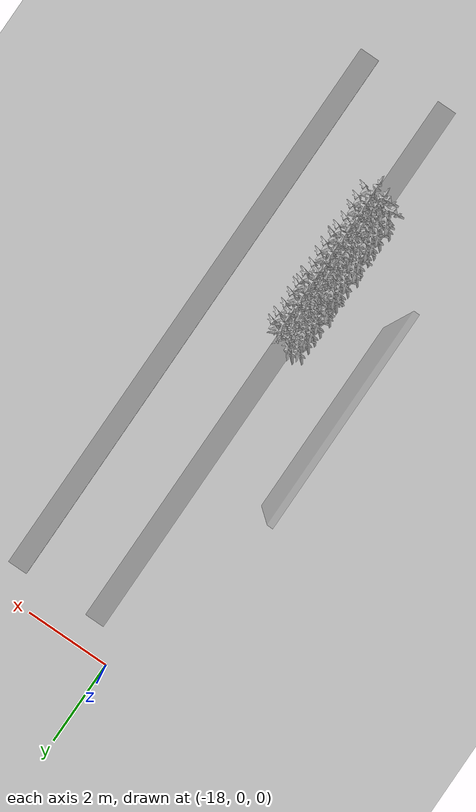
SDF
<sdf version="1.6">
 <world name="default">
  <model name="ground_plane">
   <static>1</static>
   <link name="link">
    <collision name="collision">
     <geometry><plane><normal>0 0 1</normal><size>100 100</size></plane></geometry>
     <surface>
      <contact><collide_bitmask>65535</collide_bitmask></contact>
      <friction><ode><mu>100</mu><mu2>50</mu2></ode></friction>
     </surface>
    </collision>
    <visual name="visual">
     <cast_shadows>0</cast_shadows>
     <geometry><plane><normal>0 0 1</normal><size>100 100</size></plane></geometry>
     <material>
      <script><uri>file://media/materials/scripts/gazebo.material</uri><name>Gazebo/Grey</name></script>
     </material>
    </visual>
   </link>
  </model>
  <model name="Box_24x15W_0">
   <link name="Wall">
    <pose>0 0 0.1985 0 -0 0</pose>
    <inertial>
     <mass>5</mass>
     <inertia><ixx>0.1022</ixx><iyy>0.2197</iyy><izz>0.1905</izz><ixy>0</ixy><ixz>0</ixz><iyz>0</iyz></inertia>
    </inertial>
    <collision name="Wall_Collision">
     <geometry><box><size>0.470639 13.5 0.091294</size></box></geometry>
    </collision>
    <visual name="Wall_Visual">
     <geometry><box><size>0.470639 13.5 0.091294</size></box></geometry>
     <material>
      <script><uri>file://media/materials/scripts/gazebo.material</uri><name>Gazebo/Grey</name></script>
      <ambient>1 1 1 1</ambient>
     </material>
    </visual>
   </link>
   <static>1</static>
   <pose>-15.231 -7.42579 -0.146343 0 -0 0</pose>
  </model>
  <model name="Box_24x15W">
   <link name="Wall">
    <pose>0 0 0.1985 0 -0 0</pose>
    <inertial>
     <mass>5</mass>
     <inertia><ixx>0.1022</ixx><iyy>0.2197</iyy><izz>0.1905</izz><ixy>0</ixy><ixz>0</ixz><iyz>0</iyz></inertia>
    </inertial>
    <collision name="Wall_Collision">
     <geometry><box><size>0.470639 13.5 0.091294</size></box></geometry>
    </collision>
    <visual name="Wall_Visual">
     <geometry><box><size>0.470639 13.5 0.091294</size></box></geometry>
     <material>
      <script><uri>file://media/materials/scripts/gazebo.material</uri><name>Gazebo/Grey</name></script>
      <ambient>1 1 1 1</ambient>
     </material>
    </visual>
   </link>
   <static>1</static>
   <pose>-17.2564 -7.42472 -0.14031 0 -0 0</pose>
  </model>
  <model name="Front_Plant_1_2">
   <model name="tomato_plant_medium">
    <static>1</static>
    <link name="link">
     <collision name="collision">
      <pose>0 0 0 1.5708 -0 0</pose>
      <geometry><mesh><scale>0.5 0.5 0.5</scale><uri>model://stick/meshes/stick.dae</uri></mesh></geometry>
     </collision>
     <visual name="visual">
      <geometry>
       <mesh><scale>5e-06 5e-06 6e-06</scale><uri>model://tomato_plant_medium/meshes/tomato-plant.dae</uri></mesh>
      </geometry>
     </visual>
    </link>
    <pose>0.087453 -0.595994 0.012396 0 -0 0</pose>
   </model>
   <model name="tomato_plant_medium_0">
    <static>1</static>
    <link name="link">
     <collision name="collision">
      <pose>0 0 0 1.5708 -0 0</pose>
      <geometry><mesh><scale>0.5 0.5 0.5</scale><uri>model://stick/meshes/stick.dae</uri></mesh></geometry>
     </collision>
     <visual name="visual">
      <geometry>
       <mesh><scale>5e-06 5e-06 6e-06</scale><uri>model://tomato_plant_medium/meshes/tomato-plant.dae</uri></mesh>
      </geometry>
     </visual>
    </link>
    <pose>-0.086166 -0.251822 0.012396 0 -0 0</pose>
   </model>
   <model name="tomato_plant_medium_1">
    <static>1</static>
    <link name="link">
     <collision name="collision">
      <pose>0 0 0 1.5708 -0 0</pose>
      <geometry><mesh><scale>0.5 0.5 0.5</scale><uri>model://stick/meshes/stick.dae</uri></mesh></geometry>
     </collision>
     <visual name="visual">
      <geometry>
       <mesh><scale>5e-06 5e-06 6e-06</scale><uri>model://tomato_plant_medium/meshes/tomato-plant.dae</uri></mesh>
      </geometry>
     </visual>
    </link>
    <pose>0.080199 0.118127 0.012396 0 -0 0</pose>
   </model>
   <model name="tomato_plant_small">
    <static>1</static>
    <link name="link">
     <collision name="collision">
      <pose>0 0 0 1.5708 -0 0</pose>
      <geometry><mesh><scale>0.5 0.45 0.5</scale><uri>model://stick/meshes/stick.dae</uri></mesh></geometry>
     </collision>
     <visual name="visual">
      <geometry>
       <mesh><scale>5e-06 5e-06 5e-06</scale><uri>model://tomato_plant_small/meshes/tomato-plant.dae</uri></mesh>
      </geometry>
     </visual>
    </link>
    <pose>0.099683 -1.12011 0.012396 0 -0 0</pose>
   </model>
   <model name="tomato_plant_small_0">
    <static>1</static>
    <link name="link">
     <collision name="collision">
      <pose>0 0 0 1.5708 -0 0</pose>
      <geometry><mesh><scale>0.5 0.45 0.5</scale><uri>model://stick/meshes/stick.dae</uri></mesh></geometry>
     </collision>
     <visual name="visual">
      <geometry>
       <mesh><scale>5e-06 5e-06 5e-06</scale><uri>model://tomato_plant_small/meshes/tomato-plant.dae</uri></mesh>
      </geometry>
     </visual>
    </link>
    <pose>-0.138771 -0.983982 0.012396 0 -0 0</pose>
   </model>
   <model name="tomato_plant_small_1">
    <static>1</static>
    <link name="link">
     <collision name="collision">
      <pose>0 0 0 1.5708 -0 0</pose>
      <geometry><mesh><scale>0.5 0.45 0.5</scale><uri>model://stick/meshes/stick.dae</uri></mesh></geometry>
     </collision>
     <visual name="visual">
      <geometry>
       <mesh><scale>5e-06 5e-06 5e-06</scale><uri>model://tomato_plant_small/meshes/tomato-plant.dae</uri></mesh>
      </geometry>
     </visual>
    </link>
    <pose>0.101334 -0.848814 0.012396 0 -0 0</pose>
   </model>
   <model name="tomato_plant_small_2">
    <static>1</static>
    <link name="link">
     <collision name="collision">
      <pose>0 0 0 1.5708 -0 0</pose>
      <geometry><mesh><scale>0.5 0.45 0.5</scale><uri>model://stick/meshes/stick.dae</uri></mesh></geometry>
     </collision>
     <visual name="visual">
      <geometry>
       <mesh><scale>5e-06 5e-06 5e-06</scale><uri>model://tomato_plant_small/meshes/tomato-plant.dae</uri></mesh>
      </geometry>
     </visual>
    </link>
    <pose>-0.103369 -0.683189 0.012396 0 -0 0</pose>
   </model>
   <model name="tomato_plant_small_3">
    <static>1</static>
    <link name="link">
     <collision name="collision">
      <pose>0 0 0 1.5708 -0 0</pose>
      <geometry><mesh><scale>0.5 0.45 0.5</scale><uri>model://stick/meshes/stick.dae</uri></mesh></geometry>
     </collision>
     <visual name="visual">
      <geometry>
       <mesh><scale>5e-06 5e-06 5e-06</scale><uri>model://tomato_plant_small/meshes/tomato-plant.dae</uri></mesh>
      </geometry>
     </visual>
    </link>
    <pose>-0.104381 -0.464811 0.012396 0 -0 0</pose>
   </model>
   <model name="tomato_plant_small_4">
    <static>1</static>
    <link name="link">
     <collision name="collision">
      <pose>0 0 0 1.5708 -0 0</pose>
      <geometry><mesh><scale>0.5 0.45 0.5</scale><uri>model://stick/meshes/stick.dae</uri></mesh></geometry>
     </collision>
     <visual name="visual">
      <geometry>
       <mesh><scale>5e-06 5e-06 5e-06</scale><uri>model://tomato_plant_small/meshes/tomato-plant.dae</uri></mesh>
      </geometry>
     </visual>
    </link>
    <pose>0.055604 -0.336879 0.012396 0 -0 0</pose>
   </model>
   <model name="tomato_plant_small_5">
    <static>1</static>
    <link name="link">
     <collision name="collision">
      <pose>0 0 0 1.5708 -0 0</pose>
      <geometry><mesh><scale>0.5 0.45 0.5</scale><uri>model://stick/meshes/stick.dae</uri></mesh></geometry>
     </collision>
     <visual name="visual">
      <geometry>
       <mesh><scale>5e-06 5e-06 5e-06</scale><uri>model://tomato_plant_small/meshes/tomato-plant.dae</uri></mesh>
      </geometry>
     </visual>
    </link>
    <pose>0.085059 -0.092572 0.012396 0 -0 0</pose>
   </model>
   <model name="tomato_plant_small_6">
    <static>1</static>
    <link name="link">
     <collision name="collision">
      <pose>0 0 0 1.5708 -0 0</pose>
      <geometry><mesh><scale>0.5 0.45 0.5</scale><uri>model://stick/meshes/stick.dae</uri></mesh></geometry>
     </collision>
     <visual name="visual">
      <geometry>
       <mesh><scale>5e-06 5e-06 5e-06</scale><uri>model://tomato_plant_small/meshes/tomato-plant.dae</uri></mesh>
      </geometry>
     </visual>
    </link>
    <pose>-0.096345 0.008888 0.012396 0 -0 0</pose>
   </model>
   <static>0</static>
   <pose>-17.2096 -10.4043 0 0 -0 0</pose>
  </model>
  <model name="Front_Plant_1_3">
   <model name="tomato_plant_medium">
    <static>1</static>
    <link name="link">
     <collision name="collision">
      <pose>0 0 0 1.5708 -0 0</pose>
      <geometry><mesh><scale>0.5 0.5 0.5</scale><uri>model://stick/meshes/stick.dae</uri></mesh></geometry>
     </collision>
     <visual name="visual">
      <geometry>
       <mesh><scale>5e-06 5e-06 6e-06</scale><uri>model://tomato_plant_medium/meshes/tomato-plant.dae</uri></mesh>
      </geometry>
     </visual>
    </link>
    <pose>0.087453 -0.595994 0.012396 0 -0 0</pose>
   </model>
   <model name="tomato_plant_medium_0">
    <static>1</static>
    <link name="link">
     <collision name="collision">
      <pose>0 0 0 1.5708 -0 0</pose>
      <geometry><mesh><scale>0.5 0.5 0.5</scale><uri>model://stick/meshes/stick.dae</uri></mesh></geometry>
     </collision>
     <visual name="visual">
      <geometry>
       <mesh><scale>5e-06 5e-06 6e-06</scale><uri>model://tomato_plant_medium/meshes/tomato-plant.dae</uri></mesh>
      </geometry>
     </visual>
    </link>
    <pose>-0.086166 -0.251822 0.012396 0 -0 0</pose>
   </model>
   <model name="tomato_plant_medium_1">
    <static>1</static>
    <link name="link">
     <collision name="collision">
      <pose>0 0 0 1.5708 -0 0</pose>
      <geometry><mesh><scale>0.5 0.5 0.5</scale><uri>model://stick/meshes/stick.dae</uri></mesh></geometry>
     </collision>
     <visual name="visual">
      <geometry>
       <mesh><scale>5e-06 5e-06 6e-06</scale><uri>model://tomato_plant_medium/meshes/tomato-plant.dae</uri></mesh>
      </geometry>
     </visual>
    </link>
    <pose>0.080199 0.118127 0.012396 0 -0 0</pose>
   </model>
   <model name="tomato_plant_small">
    <static>1</static>
    <link name="link">
     <collision name="collision">
      <pose>0 0 0 1.5708 -0 0</pose>
      <geometry><mesh><scale>0.5 0.45 0.5</scale><uri>model://stick/meshes/stick.dae</uri></mesh></geometry>
     </collision>
     <visual name="visual">
      <geometry>
       <mesh><scale>5e-06 5e-06 5e-06</scale><uri>model://tomato_plant_small/meshes/tomato-plant.dae</uri></mesh>
      </geometry>
     </visual>
    </link>
    <pose>0.099683 -1.12011 0.012396 0 -0 0</pose>
   </model>
   <model name="tomato_plant_small_0">
    <static>1</static>
    <link name="link">
     <collision name="collision">
      <pose>0 0 0 1.5708 -0 0</pose>
      <geometry><mesh><scale>0.5 0.45 0.5</scale><uri>model://stick/meshes/stick.dae</uri></mesh></geometry>
     </collision>
     <visual name="visual">
      <geometry>
       <mesh><scale>5e-06 5e-06 5e-06</scale><uri>model://tomato_plant_small/meshes/tomato-plant.dae</uri></mesh>
      </geometry>
     </visual>
    </link>
    <pose>-0.138771 -0.983982 0.012396 0 -0 0</pose>
   </model>
   <model name="tomato_plant_small_1">
    <static>1</static>
    <link name="link">
     <collision name="collision">
      <pose>0 0 0 1.5708 -0 0</pose>
      <geometry><mesh><scale>0.5 0.45 0.5</scale><uri>model://stick/meshes/stick.dae</uri></mesh></geometry>
     </collision>
     <visual name="visual">
      <geometry>
       <mesh><scale>5e-06 5e-06 5e-06</scale><uri>model://tomato_plant_small/meshes/tomato-plant.dae</uri></mesh>
      </geometry>
     </visual>
    </link>
    <pose>0.101334 -0.848814 0.012396 0 -0 0</pose>
   </model>
   <model name="tomato_plant_small_2">
    <static>1</static>
    <link name="link">
     <collision name="collision">
      <pose>0 0 0 1.5708 -0 0</pose>
      <geometry><mesh><scale>0.5 0.45 0.5</scale><uri>model://stick/meshes/stick.dae</uri></mesh></geometry>
     </collision>
     <visual name="visual">
      <geometry>
       <mesh><scale>5e-06 5e-06 5e-06</scale><uri>model://tomato_plant_small/meshes/tomato-plant.dae</uri></mesh>
      </geometry>
     </visual>
    </link>
    <pose>-0.103369 -0.683189 0.012396 0 -0 0</pose>
   </model>
   <model name="tomato_plant_small_3">
    <static>1</static>
    <link name="link">
     <collision name="collision">
      <pose>0 0 0 1.5708 -0 0</pose>
      <geometry><mesh><scale>0.5 0.45 0.5</scale><uri>model://stick/meshes/stick.dae</uri></mesh></geometry>
     </collision>
     <visual name="visual">
      <geometry>
       <mesh><scale>5e-06 5e-06 5e-06</scale><uri>model://tomato_plant_small/meshes/tomato-plant.dae</uri></mesh>
      </geometry>
     </visual>
    </link>
    <pose>-0.104381 -0.464811 0.012396 0 -0 0</pose>
   </model>
   <model name="tomato_plant_small_4">
    <static>1</static>
    <link name="link">
     <collision name="collision">
      <pose>0 0 0 1.5708 -0 0</pose>
      <geometry><mesh><scale>0.5 0.45 0.5</scale><uri>model://stick/meshes/stick.dae</uri></mesh></geometry>
     </collision>
     <visual name="visual">
      <geometry>
       <mesh><scale>5e-06 5e-06 5e-06</scale><uri>model://tomato_plant_small/meshes/tomato-plant.dae</uri></mesh>
      </geometry>
     </visual>
    </link>
    <pose>0.055604 -0.336879 0.012396 0 -0 0</pose>
   </model>
   <model name="tomato_plant_small_5">
    <static>1</static>
    <link name="link">
     <collision name="collision">
      <pose>0 0 0 1.5708 -0 0</pose>
      <geometry><mesh><scale>0.5 0.45 0.5</scale><uri>model://stick/meshes/stick.dae</uri></mesh></geometry>
     </collision>
     <visual name="visual">
      <geometry>
       <mesh><scale>5e-06 5e-06 5e-06</scale><uri>model://tomato_plant_small/meshes/tomato-plant.dae</uri></mesh>
      </geometry>
     </visual>
    </link>
    <pose>0.085059 -0.092572 0.012396 0 -0 0</pose>
   </model>
   <model name="tomato_plant_small_6">
    <static>1</static>
    <link name="link">
     <collision name="collision">
      <pose>0 0 0 1.5708 -0 0</pose>
      <geometry><mesh><scale>0.5 0.45 0.5</scale><uri>model://stick/meshes/stick.dae</uri></mesh></geometry>
     </collision>
     <visual name="visual">
      <geometry>
       <mesh><scale>5e-06 5e-06 5e-06</scale><uri>model://tomato_plant_small/meshes/tomato-plant.dae</uri></mesh>
      </geometry>
     </visual>
    </link>
    <pose>-0.096345 0.008888 0.012396 0 -0 0</pose>
   </model>
   <static>0</static>
   <pose>-17.2096 -9.20246 0 0 -0 0</pose>
  </model>
  <model name="Front_Plant_1_4">
   <model name="tomato_plant_medium">
    <static>1</static>
    <link name="link">
     <collision name="collision">
      <pose>0 0 0 1.5708 -0 0</pose>
      <geometry><mesh><scale>0.5 0.5 0.5</scale><uri>model://stick/meshes/stick.dae</uri></mesh></geometry>
     </collision>
     <visual name="visual">
      <geometry>
       <mesh><scale>5e-06 5e-06 6e-06</scale><uri>model://tomato_plant_medium/meshes/tomato-plant.dae</uri></mesh>
      </geometry>
     </visual>
    </link>
    <pose>0.087453 -0.595994 0.012396 0 -0 0</pose>
   </model>
   <model name="tomato_plant_medium_0">
    <static>1</static>
    <link name="link">
     <collision name="collision">
      <pose>0 0 0 1.5708 -0 0</pose>
      <geometry><mesh><scale>0.5 0.5 0.5</scale><uri>model://stick/meshes/stick.dae</uri></mesh></geometry>
     </collision>
     <visual name="visual">
      <geometry>
       <mesh><scale>5e-06 5e-06 6e-06</scale><uri>model://tomato_plant_medium/meshes/tomato-plant.dae</uri></mesh>
      </geometry>
     </visual>
    </link>
    <pose>-0.086166 -0.251822 0.012396 0 -0 0</pose>
   </model>
   <model name="tomato_plant_medium_1">
    <static>1</static>
    <link name="link">
     <collision name="collision">
      <pose>0 0 0 1.5708 -0 0</pose>
      <geometry><mesh><scale>0.5 0.5 0.5</scale><uri>model://stick/meshes/stick.dae</uri></mesh></geometry>
     </collision>
     <visual name="visual">
      <geometry>
       <mesh><scale>5e-06 5e-06 6e-06</scale><uri>model://tomato_plant_medium/meshes/tomato-plant.dae</uri></mesh>
      </geometry>
     </visual>
    </link>
    <pose>0.080199 0.118127 0.012396 0 -0 0</pose>
   </model>
   <model name="tomato_plant_small">
    <static>1</static>
    <link name="link">
     <collision name="collision">
      <pose>0 0 0 1.5708 -0 0</pose>
      <geometry><mesh><scale>0.5 0.45 0.5</scale><uri>model://stick/meshes/stick.dae</uri></mesh></geometry>
     </collision>
     <visual name="visual">
      <geometry>
       <mesh><scale>5e-06 5e-06 5e-06</scale><uri>model://tomato_plant_small/meshes/tomato-plant.dae</uri></mesh>
      </geometry>
     </visual>
    </link>
    <pose>0.099683 -1.12011 0.012396 0 -0 0</pose>
   </model>
   <model name="tomato_plant_small_0">
    <static>1</static>
    <link name="link">
     <collision name="collision">
      <pose>0 0 0 1.5708 -0 0</pose>
      <geometry><mesh><scale>0.5 0.45 0.5</scale><uri>model://stick/meshes/stick.dae</uri></mesh></geometry>
     </collision>
     <visual name="visual">
      <geometry>
       <mesh><scale>5e-06 5e-06 5e-06</scale><uri>model://tomato_plant_small/meshes/tomato-plant.dae</uri></mesh>
      </geometry>
     </visual>
    </link>
    <pose>-0.138771 -0.983982 0.012396 0 -0 0</pose>
   </model>
   <model name="tomato_plant_small_1">
    <static>1</static>
    <link name="link">
     <collision name="collision">
      <pose>0 0 0 1.5708 -0 0</pose>
      <geometry><mesh><scale>0.5 0.45 0.5</scale><uri>model://stick/meshes/stick.dae</uri></mesh></geometry>
     </collision>
     <visual name="visual">
      <geometry>
       <mesh><scale>5e-06 5e-06 5e-06</scale><uri>model://tomato_plant_small/meshes/tomato-plant.dae</uri></mesh>
      </geometry>
     </visual>
    </link>
    <pose>0.101334 -0.848814 0.012396 0 -0 0</pose>
   </model>
   <model name="tomato_plant_small_2">
    <static>1</static>
    <link name="link">
     <collision name="collision">
      <pose>0 0 0 1.5708 -0 0</pose>
      <geometry><mesh><scale>0.5 0.45 0.5</scale><uri>model://stick/meshes/stick.dae</uri></mesh></geometry>
     </collision>
     <visual name="visual">
      <geometry>
       <mesh><scale>5e-06 5e-06 5e-06</scale><uri>model://tomato_plant_small/meshes/tomato-plant.dae</uri></mesh>
      </geometry>
     </visual>
    </link>
    <pose>-0.103369 -0.683189 0.012396 0 -0 0</pose>
   </model>
   <model name="tomato_plant_small_3">
    <static>1</static>
    <link name="link">
     <collision name="collision">
      <pose>0 0 0 1.5708 -0 0</pose>
      <geometry><mesh><scale>0.5 0.45 0.5</scale><uri>model://stick/meshes/stick.dae</uri></mesh></geometry>
     </collision>
     <visual name="visual">
      <geometry>
       <mesh><scale>5e-06 5e-06 5e-06</scale><uri>model://tomato_plant_small/meshes/tomato-plant.dae</uri></mesh>
      </geometry>
     </visual>
    </link>
    <pose>-0.104381 -0.464811 0.012396 0 -0 0</pose>
   </model>
   <model name="tomato_plant_small_4">
    <static>1</static>
    <link name="link">
     <collision name="collision">
      <pose>0 0 0 1.5708 -0 0</pose>
      <geometry><mesh><scale>0.5 0.45 0.5</scale><uri>model://stick/meshes/stick.dae</uri></mesh></geometry>
     </collision>
     <visual name="visual">
      <geometry>
       <mesh><scale>5e-06 5e-06 5e-06</scale><uri>model://tomato_plant_small/meshes/tomato-plant.dae</uri></mesh>
      </geometry>
     </visual>
    </link>
    <pose>0.055604 -0.336879 0.012396 0 -0 0</pose>
   </model>
   <model name="tomato_plant_small_5">
    <static>1</static>
    <link name="link">
     <collision name="collision">
      <pose>0 0 0 1.5708 -0 0</pose>
      <geometry><mesh><scale>0.5 0.45 0.5</scale><uri>model://stick/meshes/stick.dae</uri></mesh></geometry>
     </collision>
     <visual name="visual">
      <geometry>
       <mesh><scale>5e-06 5e-06 5e-06</scale><uri>model://tomato_plant_small/meshes/tomato-plant.dae</uri></mesh>
      </geometry>
     </visual>
    </link>
    <pose>0.085059 -0.092572 0.012396 0 -0 0</pose>
   </model>
   <model name="tomato_plant_small_6">
    <static>1</static>
    <link name="link">
     <collision name="collision">
      <pose>0 0 0 1.5708 -0 0</pose>
      <geometry><mesh><scale>0.5 0.45 0.5</scale><uri>model://stick/meshes/stick.dae</uri></mesh></geometry>
     </collision>
     <visual name="visual">
      <geometry>
       <mesh><scale>5e-06 5e-06 5e-06</scale><uri>model://tomato_plant_small/meshes/tomato-plant.dae</uri></mesh>
      </geometry>
     </visual>
    </link>
    <pose>-0.096345 0.008888 0.012396 0 -0 0</pose>
   </model>
   <static>0</static>
   <pose>-17.2096 -8.15623 0 0 -0 0</pose>
  </model>
  <model name="wall_0_clone">
   <link name="link">
    <inertial>
     <mass>2.87883</mass>
     <inertia><ixx>11.0771</ixx><ixy>0</ixy><ixz>0</ixz><iyy>5.80298</iyy><iyz>0</iyz><izz>5.28163</izz></inertia>
    </inertial>
    <pose>0 -0.040293 1.94803 0 -0 0</pose>
    <visual name="visual">
     <geometry><box><size>0.12484 4.69043 4.91663</size></box></geometry>
     <material>
      <script><name>Gazebo/Grey</name><uri>file://media/materials/scripts/gazebo.material</uri></script>
      <ambient>0.3 0.3 0.3 1</ambient>
      <diffuse>0.7 0.7 0.7 1</diffuse>
      <specular>0.01 0.01 0.01 1</specular>
      <emissive>0 0 0 1</emissive>
      <shader type="vertex"><normal_map>__default__</normal_map></shader>
     </material>
     <transparency>0.5</transparency>
    </visual>
    <collision name="collision">
     <geometry><box><size>0.12484 4.69043 4.91663</size></box></geometry>
     <surface>
      <friction>
       <ode><mu>1</mu><mu2>1</mu2><fdir1>0 0 0</fdir1><slip1>0</slip1><slip2>0</slip2></ode>
       <torsional>
        <coefficient>1</coefficient>
        <patch_radius>0</patch_radius>
        <surface_radius>0</surface_radius>
        <use_patch_radius>1</use_patch_radius>
        <ode><slip>0</slip></ode>
       </torsional>
      </friction>
      <bounce><restitution_coefficient>0</restitution_coefficient><threshold>1e+06</threshold></bounce>
      <contact>
       <collide_without_contact>0</collide_without_contact>
       <collide_without_contact_bitmask>1</collide_without_contact_bitmask>
       <collide_bitmask>1</collide_bitmask>
       <ode>
        <soft_cfm>0</soft_cfm>
        <soft_erp>0.2</soft_erp>
        <kp>1e+13</kp>
        <kd>1</kd>
        <max_vel>0.01</max_vel>
        <min_depth>0</min_depth>
       </ode>
       <bullet>
        <split_impulse>1</split_impulse>
        <split_impulse_penetration_threshold>-0.01</split_impulse_penetration_threshold>
        <soft_cfm>0</soft_cfm>
        <soft_erp>0.2</soft_erp>
        <kp>1e+13</kp>
        <kd>1</kd>
       </bullet>
      </contact>
     </surface>
    </collision>
   </link>
   <static>0</static>
   <pose>-18.8922 -7.06969 0.520287 -1e-06 -1e-06 6.5e-05</pose>
  </model>
 </world>
</sdf>
